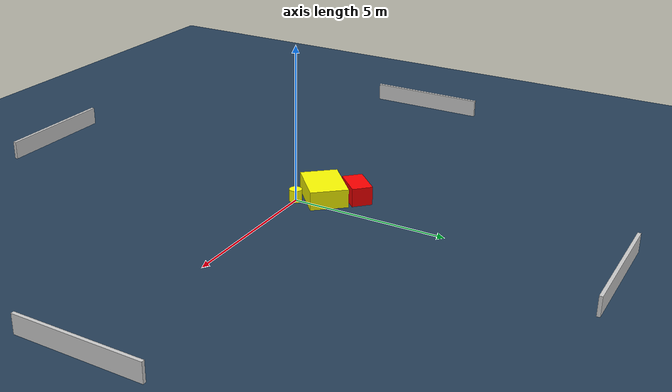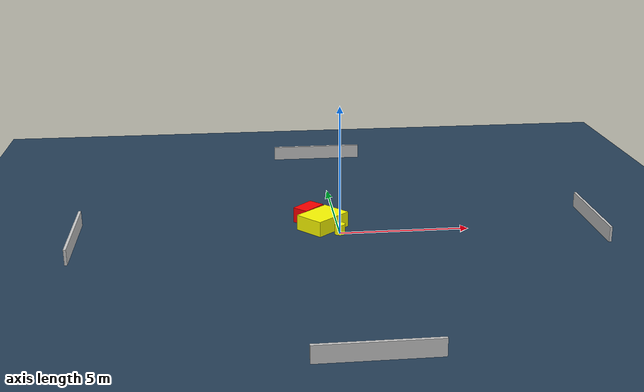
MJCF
<?xml version="1.0" ?>
<mujoco model="generated_environment">
  <option timestep="0.01" integrator="RK4" cone="elliptic"/>
  <default>
    <geom density="1"/>
  </default>
  <asset>
    <texture builtin="gradient" height="3072" name="skybox" rgb1="0.3 0.5 0.7" rgb2="0 0 0" type="skybox" width="512"/>
    <texture builtin="checker" height="300" name="groundplane" rgb1="0.2 0.3 0.4" rgb2="0.1 0.2 0.3" type="2d" width="300"/>
    <material name="groundplane" reflectance="0.2" texrepeat="5 5" texture="groundplane"/>
  </asset>
  <worldbody>
    <light dir="0 0 -1" directional="true" pos="0 0 1.5"/>
    <geom condim="3" friction="0.5 0.005 0.001" material="groundplane" name="floor" pos="0 0 0" size="0 0 0.05" type="plane"/>
    <body name="walls">
      <geom name="wall_1" condim="4" pos="-10.0 0.0 0.3" rgba="0.800000011920929 0.800000011920929 0.800000011920929 1.0" size="0.05 2.0 0.3" type="box"/>
      <geom name="wall_2" condim="4" pos="10.0 0.0 0.3" rgba="0.800000011920929 0.800000011920929 0.800000011920929 1.0" size="0.05 2.0 0.3" type="box"/>
      <geom name="wall_3" condim="4" pos="0.0 -10.0 0.3" rgba="0.800000011920929 0.800000011920929 0.800000011920929 1.0" size="2.0 0.05 0.3" type="box"/>
      <geom name="wall_4" condim="4" pos="0.0 10.0 0.3" rgba="0.800000011920929 0.800000011920929 0.800000011920929 1.0" size="2.0 0.05 0.3" type="box"/>
    </body>
    <body name="robot">
      <joint name="joint_x" type="slide" pos="0 0 0" axis="1 0 0"/>
      <joint name="joint_y" type="slide" pos="0 0 0" axis="0 1 0"/>
      <geom name="robot" type="cylinder" pos="0.0 0.0 0.2" size="0.2 0.2 0.0" mass="5.0" friction="1.0 0.005 0.0001" condim="4" rgba="1.0 1.0 0.0 1.0"/>
    </body>
    <body name="obstacle_1_movable">
      <geom name="obstacle_1_movable" condim="4" pos="-0.5964117726003486 0.6784732655925446 0.3" euler="0 0 221.6536160811472" friction="0.0 0.005 0.001" rgba="1.0 1.0 0.0 1.0" size="0.7997995606565773 0.6048860957939262 0.3" type="box" mass="0.1"/>
      <joint type="free"/>
    </body>
    <body name="obstacle_2_static">
      <geom name="obstacle_2_static" condim="4" pos="-1.0795644931643587 1.5957716964394313 0.3" euler="0 0 225.6752933636717" friction="0.0 0.005 0.001" rgba="1.0 0.0 0.0 1.0" size="0.5208787447628901 0.3305254011096262 0.3" type="box"/>
    </body>
  </worldbody>
  <actuator>
    <motor name="actuator_x" joint="joint_x" gear="1" ctrlrange="-1 1"/>
    <motor name="actuator_y" joint="joint_y" gear="1" ctrlrange="-1 1"/>
  </actuator>
</mujoco>
